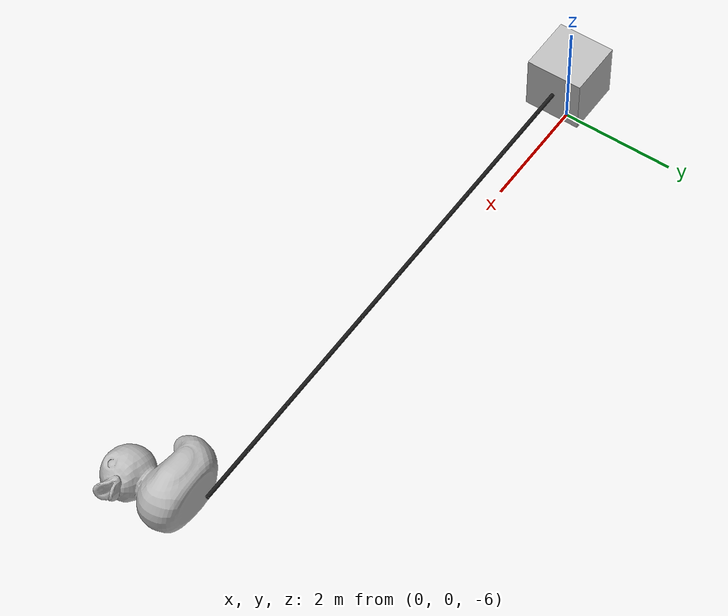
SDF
<sdf version="1.6">
 <world name="tether">
  <plugin filename="gz-sim-physics-system" name="gz::sim::systems::Physics"/>
  <plugin filename="gz-sim-sensors-system" name="gz::sim::systems::Sensors">
   <render_engine>ogre2</render_engine>
   <background_color>0.8 0.8 0.8</background_color>
  </plugin>
  <plugin filename="gz-sim-scene-broadcaster-system" name="gz::sim::systems::SceneBroadcaster"/>
  <plugin filename="gz-sim-user-commands-system" name="gz::sim::systems::UserCommands"/>
  <scene><ambient>1.0 1.0 1.0</ambient><background>0.8 0.8 0.8</background></scene>
  <light type="directional" name="sun">
   <pose>0 0 10 0 0 0</pose>
   <diffuse>0.8 0.8 0.8 1</diffuse>
   <specular>0.6 0.6 0.6 1</specular>
   <direction>-0.5 0.1 -0.9</direction>
  </light>
  <model name="tethered_duck">
   <model name="anchor">
    <pose>0 0 -5 0 0 0</pose>
    <link name="base_link">
     <visual name="visual"><geometry><box><size>1 1 1</size></box></geometry></visual>
     <collision name="collision"><geometry><box><size>1 1 1</size></box></geometry></collision>
     <inertial>
      <mass>1000</mass>
      <inertia>
       <ixx>166.6666667</ixx>
       <ixy>0.0</ixy>
       <ixz>0.0</ixz>
       <iyy>166.6666667</iyy>
       <iyz>0.0</iyz>
       <izz>166.6666667</izz>
      </inertia>
     </inertial>
    </link>
    <joint type="revolute" name="world_joint">
     <parent>world</parent>
     <child>base_link</child>
     <axis>
      <xyz>0 0 1</xyz>
      <limit><lower>0</lower><upper>0</upper></limit>
      <dynamics><damping>1.0</damping></dynamics>
     </axis>
    </joint>
   </model>
   <include><pose>0.5 0 -5 0 1.57 0</pose><uri>model://chain_10m</uri><name>chain</name></include>
   <joint type="universal" name="anchor_joint">
    <pose>0 0 -0.5 0 0 0</pose>
    <parent>anchor::base_link</parent>
    <child>chain::chain0::base_link</child>
    <axis>
     <xyz>0 1 0</xyz>
     <limit><lower>-3.141592</lower><upper>3.141592</upper></limit>
     <dynamics><damping>0.1</damping></dynamics>
    </axis>
    <axis2>
     <xyz>0 0 1</xyz>
     <limit><lower>-3.141592</lower><upper>3.141592</upper></limit>
     <dynamics><damping>1.0</damping></dynamics>
    </axis2>
   </joint>
   <include><pose>10 0 -5 0 0 0</pose><uri>model://duck</uri></include>
   <joint type="universal" name="duck_joint">
    <parent>chain::chain9::base_link</parent>
    <child>duck::base_link</child>
    <axis>
     <xyz>0 1 0</xyz>
     <limit><lower>-3.141592</lower><upper>3.141592</upper></limit>
     <dynamics><damping>1.0</damping></dynamics>
    </axis>
    <axis2>
     <xyz>0 0 1</xyz>
     <limit><lower>-3.141592</lower><upper>3.141592</upper></limit>
     <dynamics><damping>1.0</damping></dynamics>
    </axis2>
   </joint>
  </model>
 </world>
</sdf>

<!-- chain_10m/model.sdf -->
<sdf version="1.6">
  <model name="chain_10m">

    <include>
      <pose>0 0 0 0 0 0</pose>
      <uri>model://chain_1m</uri>
      <name>chain0</name>
    </include>

    <include>
      <pose>0 0 1 0 0 0</pose>
      <uri>model://chain_1m</uri>
      <name>chain1</name>
    </include>

    <include>
      <pose>0 0 2 0 0 0</pose>
      <uri>model://chain_1m</uri>
      <name>chain2</name>
    </include>

    <include>
      <pose>0 0 3 0 0 0</pose>
      <uri>model://chain_1m</uri>
      <name>chain3</name>
    </include>

    <include>
      <pose>0 0 4 0 0 0</pose>
      <uri>model://chain_1m</uri>
      <name>chain4</name>
    </include>

    <include>
      <pose>0 0 5 0 0 0</pose>
      <uri>model://chain_1m</uri>
      <name>chain5</name>
    </include>

    <include>
      <pose>0 0 6 0 0 0</pose>
      <uri>model://chain_1m</uri>
      <name>chain6</name>
    </include>

    <include>
      <pose>0 0 7 0 0 0</pose>
      <uri>model://chain_1m</uri>
      <name>chain7</name>
    </include>

    <include>
      <pose>0 0 8 0 0 0</pose>
      <uri>model://chain_1m</uri>
      <name>chain8</name>
    </include>

    <include>
      <pose>0 0 9 0 0 0</pose>
      <uri>model://chain_1m</uri>
      <name>chain9</name>
    </include>

    <joint type="universal" name="joint1">
      <pose>0 0 -0.5 0 0 0</pose>
      <parent>chain0::base_link</parent>
      <child>chain1::base_link</child>
      <axis>
        <xyz>0 1 0</xyz>
        <limit>
          <lower>-3.141592</lower>
          <upper>3.141592</upper>
        </limit>
        <dynamics>
          <damping>1.0</damping>
        </dynamics>
      </axis>
      <axis2>
        <xyz>0 0 1</xyz>
        <limit>
          <lower>-3.141592</lower>
          <upper>3.141592</upper>
        </limit>
        <dynamics>
          <damping>1.0</damping>
        </dynamics>
      </axis2>
      <physics>
        <ode>
          <cfm>0.5</cfm>
          <erp>0.01</erp>
        </ode>
      </physics>
    </joint>

    <joint type="universal" name="joint2">
      <pose>0 0 -0.5 0 0 0</pose>
      <parent>chain1::base_link</parent>
      <child>chain2::base_link</child>
      <axis>
        <xyz>0 1 0</xyz>
        <limit>
          <lower>-3.141592</lower>
          <upper>3.141592</upper>
        </limit>
        <dynamics>
          <damping>1.0</damping>
        </dynamics>
      </axis>
      <axis2>
        <xyz>0 0 1</xyz>
        <limit>
          <lower>-3.141592</lower>
          <upper>3.141592</upper>
        </limit>
        <dynamics>
          <damping>1.0</damping>
        </dynamics>
      </axis2>
      <physics>
        <ode>
          <cfm>0.5</cfm>
          <erp>0.01</erp>
        </ode>
      </physics>
    </joint>

    <joint type="universal" name="joint3">
      <pose>0 0 -0.5 0 0 0</pose>
      <parent>chain2::base_link</parent>
      <child>chain3::base_link</child>
      <axis>
        <xyz>0 1 0</xyz>
        <limit>
          <lower>-3.141592</lower>
          <upper>3.141592</upper>
        </limit>
        <dynamics>
          <damping>1.0</damping>
        </dynamics>
      </axis>
      <axis2>
        <xyz>0 0 1</xyz>
        <limit>
          <lower>-3.141592</lower>
          <upper>3.141592</upper>
        </limit>
        <dynamics>
          <damping>1.0</damping>
        </dynamics>
      </axis2>
      <physics>
        <ode>
          <cfm>0.5</cfm>
          <erp>0.01</erp>
        </ode>
      </physics>
    </joint>

    <joint type="universal" name="joint4">
      <pose>0 0 -0.5 0 0 0</pose>
      <parent>chain3::base_link</parent>
      <child>chain4::base_link</child>
      <axis>
        <xyz>0 1 0</xyz>
        <limit>
          <lower>-3.141592</lower>
          <upper>3.141592</upper>
        </limit>
        <dynamics>
          <damping>1.0</damping>
        </dynamics>
      </axis>
      <axis2>
        <xyz>0 0 1</xyz>
        <limit>
          <lower>-3.141592</lower>
          <upper>3.141592</upper>
        </limit>
        <dynamics>
          <damping>1.0</damping>
        </dynamics>
      </axis2>
      <physics>
        <ode>
          <cfm>0.5</cfm>
          <erp>0.01</erp>
        </ode>
      </physics>
    </joint>

    <joint type="universal" name="joint5">
      <pose>0 0 -0.5 0 0 0</pose>
      <parent>chain4::base_link</parent>
      <child>chain5::base_link</child>
      <axis>
        <xyz>0 1 0</xyz>
        <limit>
          <lower>-3.141592</lower>
          <upper>3.141592</upper>
        </limit>
        <dynamics>
          <damping>1.0</damping>
        </dynamics>
      </axis>
      <axis2>
        <xyz>0 0 1</xyz>
        <limit>
          <lower>-3.141592</lower>
          <upper>3.141592</upper>
        </limit>
        <dynamics>
          <damping>1.0</damping>
        </dynamics>
      </axis2>
      <physics>
        <ode>
          <cfm>0.5</cfm>
          <erp>0.01</erp>
        </ode>
      </physics>
    </joint>

    <joint type="universal" name="joint6">
      <pose>0 0 -0.5 0 0 0</pose>
      <parent>chain5::base_link</parent>
      <child>chain6::base_link</child>
      <axis>
        <xyz>0 1 0</xyz>
        <limit>
          <lower>-3.141592</lower>
          <upper>3.141592</upper>
        </limit>
        <dynamics>
          <damping>1.0</damping>
        </dynamics>
      </axis>
      <axis2>
        <xyz>0 0 1</xyz>
        <limit>
          <lower>-3.141592</lower>
          <upper>3.141592</upper>
        </limit>
        <dynamics>
          <damping>1.0</damping>
        </dynamics>
      </axis2>
      <physics>
        <ode>
          <cfm>0.5</cfm>
          <erp>0.01</erp>
        </ode>
      </physics>
    </joint>

    <joint type="universal" name="joint7">
      <pose>0 0 -0.5 0 0 0</pose>
      <parent>chain6::base_link</parent>
      <child>chain7::base_link</child>
      <axis>
        <xyz>0 1 0</xyz>
        <limit>
          <lower>-3.141592</lower>
          <upper>3.141592</upper>
        </limit>
        <dynamics>
          <damping>1.0</damping>
        </dynamics>
      </axis>
      <axis2>
        <xyz>0 0 1</xyz>
        <limit>
          <lower>-3.141592</lower>
          <upper>3.141592</upper>
        </limit>
        <dynamics>
          <damping>1.0</damping>
        </dynamics>
      </axis2>
      <physics>
        <ode>
          <cfm>0.5</cfm>
          <erp>0.01</erp>
        </ode>
      </physics>
    </joint>

    <joint type="universal" name="joint8">
      <pose>0 0 -0.5 0 0 0</pose>
      <parent>chain7::base_link</parent>
      <child>chain8::base_link</child>
      <axis>
        <xyz>0 1 0</xyz>
        <limit>
          <lower>-3.141592</lower>
          <upper>3.141592</upper>
        </limit>
        <dynamics>
          <damping>1.0</damping>
        </dynamics>
      </axis>
      <axis2>
        <xyz>0 0 1</xyz>
        <limit>
          <lower>-3.141592</lower>
          <upper>3.141592</upper>
        </limit>
        <dynamics>
          <damping>1.0</damping>
        </dynamics>
      </axis2>
      <physics>
        <ode>
          <cfm>0.5</cfm>
          <erp>0.01</erp>
        </ode>
      </physics>
    </joint>

    <joint type="universal" name="joint9">
      <pose>0 0 -0.5 0 0 0</pose>
      <parent>chain8::base_link</parent>
      <child>chain9::base_link</child>
      <axis>
        <xyz>0 1 0</xyz>
        <limit>
          <lower>-3.141592</lower>
          <upper>3.141592</upper>
        </limit>
        <dynamics>
          <damping>1.0</damping>
        </dynamics>
      </axis>
      <axis2>
        <xyz>0 0 1</xyz>
        <limit>
          <lower>-3.141592</lower>
          <upper>3.141592</upper>
        </limit>
        <dynamics>
          <damping>1.0</damping>
        </dynamics>
      </axis2>
      <physics>
        <ode>
          <cfm>0.5</cfm>
          <erp>0.01</erp>
        </ode>
      </physics>
    </joint>

  </model>
</sdf>

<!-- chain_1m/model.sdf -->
<sdf version="1.6">
  <model name="chain_1m">
    <link name="base_link">
      <visual name="visual">
        <geometry>
          <cylinder>
            <radius>0.035</radius>
            <length>1.0</length>
          </cylinder>
        </geometry>
        <material>
          <ambient>0.1 0.1 0.1 1.0</ambient>
          <diffuse>0.1 0.1 0.1 1.0</diffuse>
          <specular>0.1 0.1 0.1 1.0</specular>
        </material>
      </visual>
      <collision name="collision">
        <geometry>
          <cylinder>
            <radius>0.035</radius>
            <length>1.0</length>
          </cylinder>
        </geometry>
      </collision>
      <inertial>
        <mass>908</mass>
        <inertia>
          <ixx>81.9667917</ixx>
          <ixy>0.0</ixy>
          <ixz>0.0</ixz>
          <iyy>81.9667917</iyy>
          <iyz>0.0</iyz>
          <izz>0.60025</izz>
        </inertia>
      </inertial>
    </link>
  </model>
</sdf>

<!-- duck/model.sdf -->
<sdf version='1.6'>
  <model name='duck'>
    <static>false</static>
    <plugin
        filename="gz-waves1-hydrodynamics-system"
        name="gz::sim::systems::Hydrodynamics">
    </plugin>
    <link name="base_link">
      <visual name="visual">
        <pose>0 0 0 1.5708 0 0</pose>
        <geometry>
          <mesh>
            <uri>model://duck/meshes/duck.dae</uri>
          </mesh>
        </geometry>
      </visual>
      <collision name="collision">
        <pose>0 0 0 0 0 0</pose>
        <geometry>
          <mesh>
            <uri>model://duck/meshes/duck_collision.stl</uri>
          </mesh>
        </geometry>
      </collision>
      <inertial>
        <pose>0 0 0 0 0 0</pose>
        <mass>400</mass>
        <inertia>
          <ixx>266</ixx>
          <ixy>0</ixy>
          <iyy>266</iyy>
          <iyz>0</iyz>
          <izz>266</izz>
        </inertia>
      </inertial>
    </link>
  </model>
</sdf>
